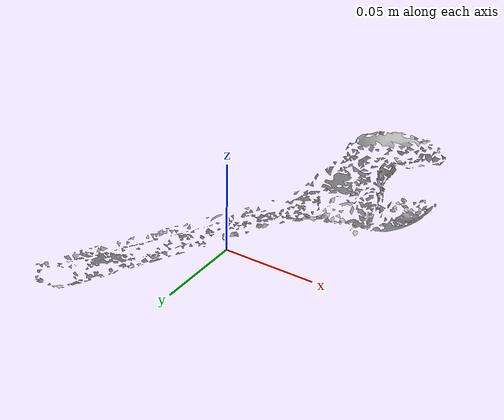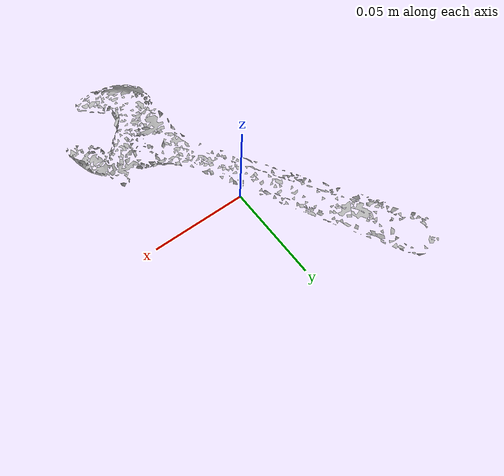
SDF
<?xml version="1.0" ?>
<sdf version="1.4">
  <model name='ycb_042_adjustable_wrench'>
    <link name='body'>
      <inertial>
        <mass>0.0267593359491</mass>
        <pose>0.0145014626744 -0.04966484184 0.00425078099655 0 0 0</pose>
        <inertia>
          <ixx>4.55098826863e-05</ixx>
          <ixy>2.21144278972e-05</ixy>
          <ixz>-3.8712345047e-07</ixz>
          <iyy>1.80746488729e-05</iyy>
          <iyz>1.04826499401e-06</iyz>
          <izz>6.32630736728e-05</izz>
        </inertia>
      </inertial>
      <visual name='ycb_042_adjustable_wrench_visual'>
        <pose>0 0 0 0 0 0</pose>
        <geometry>
          <mesh>
            <uri>model://ycb_042_adjustable_wrench/meshes/textured.dae</uri>
          </mesh>
        </geometry>
      </visual>
      <collision name='ycb_042_adjustable_wrench_collision'>
        <pose>0 0 0 0 0 0</pose>
        <geometry>
          <mesh>
            <uri>model://ycb_042_adjustable_wrench/meshes/nontextured.stl</uri>
          </mesh>
        </geometry>
        <max_contacts>10</max_contacts>
      </collision>
    </link>
  </model>
</sdf>
